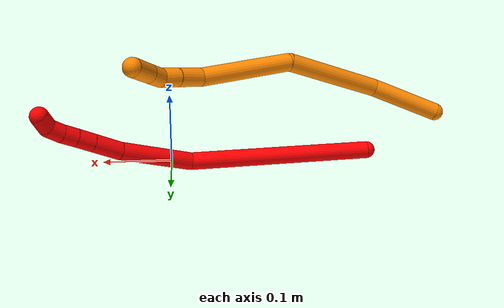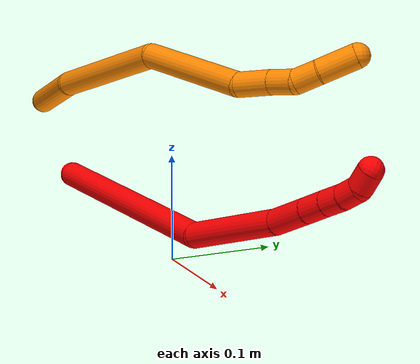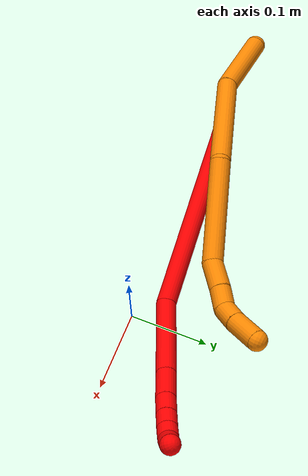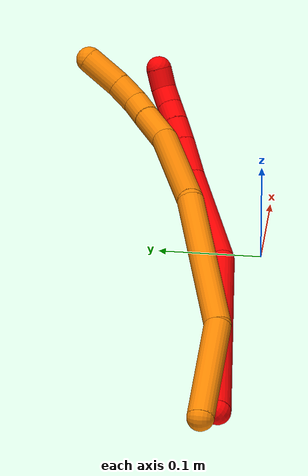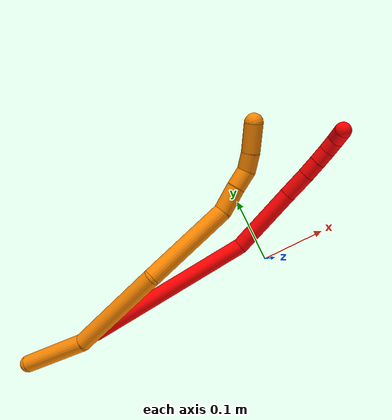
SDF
<sdf version="1.7">
 <world name="default">
  <model name="2">
   <static>0</static>
   <link name="2">
    <collision name="collision-cylinder-e_1_1_4">
     <pose>0.127976 -0.021684 -0.02227 2.36952 1.33253 2.18735</pose>
     <geometry><cylinder><radius>0.0125</radius><length>0.263393</length></cylinder></geometry>
     <surface>
      <friction><ode><mu>1.16</mu><mu2>1.16</mu2><slip1>0</slip1><slip2>0</slip2></ode></friction>
      <contact><ode><kp>1e+06</kp><kd>1</kd><max_vel>0</max_vel><min_depth>0.001</min_depth></ode></contact>
     </surface>
    </collision>
    <visual name="visual-cylinder-e_1_1_4">
     <pose>0.127976 -0.021684 -0.02227 2.36952 1.33253 2.18735</pose>
     <geometry><cylinder><radius>0.0125</radius><length>0.263393</length></cylinder></geometry>
     <material><ambient>1 0 0 1</ambient></material>
    </visual>
    <collision name="collision-cylinder-e_2_4_5">
     <pose>0.307857 -0.050907 -0.030588 0.495421 1.27427 0.370068</pose>
     <geometry><cylinder><radius>0.0125</radius><length>0.108548</length></cylinder></geometry>
     <surface>
      <friction><ode><mu>1.16</mu><mu2>1.16</mu2><slip1>0</slip1><slip2>0</slip2></ode></friction>
      <contact><ode><kp>1e+06</kp><kd>1</kd><max_vel>0</max_vel><min_depth>0.001</min_depth></ode></contact>
     </surface>
    </collision>
    <visual name="visual-cylinder-e_2_4_5">
     <pose>0.307857 -0.050907 -0.030588 0.495421 1.27427 0.370068</pose>
     <geometry><cylinder><radius>0.0125</radius><length>0.108548</length></cylinder></geometry>
     <material><ambient>1 0 0 1</ambient></material>
    </visual>
    <collision name="collision-cylinder-e_3_5_6">
     <pose>0.378409 -0.063098 -0.009385 0.570414 1.138 0.370731</pose>
     <geometry><cylinder><radius>0.0125</radius><length>0.04108</length></cylinder></geometry>
     <surface>
      <friction><ode><mu>1.16</mu><mu2>1.16</mu2><slip1>0</slip1><slip2>0</slip2></ode></friction>
      <contact><ode><kp>1e+06</kp><kd>1</kd><max_vel>0</max_vel><min_depth>0.001</min_depth></ode></contact>
     </surface>
    </collision>
    <visual name="visual-cylinder-e_3_5_6">
     <pose>0.378409 -0.063098 -0.009385 0.570414 1.138 0.370731</pose>
     <geometry><cylinder><radius>0.0125</radius><length>0.04108</length></cylinder></geometry>
     <material><ambient>1 0 0 1</ambient></material>
    </visual>
    <collision name="collision-cylinder-e_4_6_7">
     <pose>0.408324 -0.070322 0.002616 0.496241 1.12382 0.316349</pose>
     <geometry><cylinder><radius>0.0125</radius><length>0.024994</length></cylinder></geometry>
     <surface>
      <friction><ode><mu>1.16</mu><mu2>1.16</mu2><slip1>0</slip1><slip2>0</slip2></ode></friction>
      <contact><ode><kp>1e+06</kp><kd>1</kd><max_vel>0</max_vel><min_depth>0.001</min_depth></ode></contact>
     </surface>
    </collision>
    <visual name="visual-cylinder-e_4_6_7">
     <pose>0.408324 -0.070322 0.002616 0.496241 1.12382 0.316349</pose>
     <geometry><cylinder><radius>0.0125</radius><length>0.024994</length></cylinder></geometry>
     <material><ambient>1 0 0 1</ambient></material>
    </visual>
    <collision name="collision-cylinder-e_5_7_8">
     <pose>0.429037 -0.074849 0.011302 0.461054 1.13528 0.297105</pose>
     <geometry><cylinder><radius>0.0125</radius><length>0.020834</length></cylinder></geometry>
     <surface>
      <friction><ode><mu>1.16</mu><mu2>1.16</mu2><slip1>0</slip1><slip2>0</slip2></ode></friction>
      <contact><ode><kp>1e+06</kp><kd>1</kd><max_vel>0</max_vel><min_depth>0.001</min_depth></ode></contact>
     </surface>
    </collision>
    <visual name="visual-cylinder-e_5_7_8">
     <pose>0.429037 -0.074849 0.011302 0.461054 1.13528 0.297105</pose>
     <geometry><cylinder><radius>0.0125</radius><length>0.020834</length></cylinder></geometry>
     <material><ambient>1 0 0 1</ambient></material>
    </visual>
    <collision name="collision-cylinder-e_6_8_9">
     <pose>0.447057 -0.079169 0.020045 0.457182 1.01239 0.256544</pose>
     <geometry><cylinder><radius>0.0125</radius><length>0.020223</length></cylinder></geometry>
     <surface>
      <friction><ode><mu>1.16</mu><mu2>1.16</mu2><slip1>0</slip1><slip2>0</slip2></ode></friction>
      <contact><ode><kp>1e+06</kp><kd>1</kd><max_vel>0</max_vel><min_depth>0.001</min_depth></ode></contact>
     </surface>
    </collision>
    <visual name="visual-cylinder-e_6_8_9">
     <pose>0.447057 -0.079169 0.020045 0.457182 1.01239 0.256544</pose>
     <geometry><cylinder><radius>0.0125</radius><length>0.020223</length></cylinder></geometry>
     <material><ambient>1 0 0 1</ambient></material>
    </visual>
    <collision name="collision-cylinder-e_7_9_2">
     <pose>0.460953 -0.086164 0.032582 0.539676 0.533325 0.150821</pose>
     <geometry><cylinder><radius>0.0125</radius><length>0.020929</length></cylinder></geometry>
     <surface>
      <friction><ode><mu>1.16</mu><mu2>1.16</mu2><slip1>0</slip1><slip2>0</slip2></ode></friction>
      <contact><ode><kp>1e+06</kp><kd>1</kd><max_vel>0</max_vel><min_depth>0.001</min_depth></ode></contact>
     </surface>
    </collision>
    <visual name="visual-cylinder-e_7_9_2">
     <pose>0.460953 -0.086164 0.032582 0.539676 0.533325 0.150821</pose>
     <geometry><cylinder><radius>0.0125</radius><length>0.020929</length></cylinder></geometry>
     <material><ambient>1 0 0 1</ambient></material>
    </visual>
    <collision name="collision-sphere-2">
     <pose>0.466273 -0.090795 0.040313 0 -0 0</pose>
     <geometry><sphere><radius>0.0125</radius></sphere></geometry>
     <surface>
      <friction><ode><mu>1.16</mu><mu2>1.16</mu2><slip1>0</slip1><slip2>0</slip2></ode></friction>
      <contact><ode><kp>1e+06</kp><kd>1</kd><max_vel>0</max_vel><min_depth>0.001</min_depth></ode></contact>
     </surface>
    </collision>
    <visual name="visual-sphere-2">
     <pose>0.466273 -0.090795 0.040313 0 -0 0</pose>
     <geometry><sphere><radius>0.0125</radius></sphere></geometry>
     <material><ambient>1 0 0 1</ambient></material>
    </visual>
    <collision name="collision-sphere-9">
     <pose>0.455633 -0.081534 0.024852 0 -0 0</pose>
     <geometry><sphere><radius>0.0125</radius></sphere></geometry>
     <surface>
      <friction><ode><mu>1.16</mu><mu2>1.16</mu2><slip1>0</slip1><slip2>0</slip2></ode></friction>
      <contact><ode><kp>1e+06</kp><kd>1</kd><max_vel>0</max_vel><min_depth>0.001</min_depth></ode></contact>
     </surface>
    </collision>
    <visual name="visual-sphere-9">
     <pose>0.455633 -0.081534 0.024852 0 -0 0</pose>
     <geometry><sphere><radius>0.0125</radius></sphere></geometry>
     <material><ambient>1 0 0 1</ambient></material>
    </visual>
    <collision name="collision-sphere-4">
     <pose>0.255952 -0.043368 -0.04454 0 -0 0</pose>
     <geometry><sphere><radius>0.0125</radius></sphere></geometry>
     <surface>
      <friction><ode><mu>1.16</mu><mu2>1.16</mu2><slip1>0</slip1><slip2>0</slip2></ode></friction>
      <contact><ode><kp>1e+06</kp><kd>1</kd><max_vel>0</max_vel><min_depth>0.001</min_depth></ode></contact>
     </surface>
    </collision>
    <visual name="visual-sphere-4">
     <pose>0.255952 -0.043368 -0.04454 0 -0 0</pose>
     <geometry><sphere><radius>0.0125</radius></sphere></geometry>
     <material><ambient>1 0 0 1</ambient></material>
    </visual>
    <collision name="collision-sphere-1">
     <geometry><sphere><radius>0.0125</radius></sphere></geometry>
     <surface>
      <friction><ode><mu>1.16</mu><mu2>1.16</mu2><slip1>0</slip1><slip2>0</slip2></ode></friction>
      <contact><ode><kp>1e+06</kp><kd>1</kd><max_vel>0</max_vel><min_depth>0.001</min_depth></ode></contact>
     </surface>
    </collision>
    <visual name="visual-sphere-1">
     <geometry><sphere><radius>0.0125</radius></sphere></geometry>
     <material><ambient>1 0 0 1</ambient></material>
    </visual>
    <collision name="collision-sphere-8">
     <pose>0.438482 -0.076804 0.015238 0 -0 0</pose>
     <geometry><sphere><radius>0.0125</radius></sphere></geometry>
     <surface>
      <friction><ode><mu>1.16</mu><mu2>1.16</mu2><slip1>0</slip1><slip2>0</slip2></ode></friction>
      <contact><ode><kp>1e+06</kp><kd>1</kd><max_vel>0</max_vel><min_depth>0.001</min_depth></ode></contact>
     </surface>
    </collision>
    <visual name="visual-sphere-8">
     <pose>0.438482 -0.076804 0.015238 0 -0 0</pose>
     <geometry><sphere><radius>0.0125</radius></sphere></geometry>
     <material><ambient>1 0 0 1</ambient></material>
    </visual>
    <collision name="collision-sphere-5">
     <pose>0.359763 -0.058447 -0.016636 0 -0 0</pose>
     <geometry><sphere><radius>0.0125</radius></sphere></geometry>
     <surface>
      <friction><ode><mu>1.16</mu><mu2>1.16</mu2><slip1>0</slip1><slip2>0</slip2></ode></friction>
      <contact><ode><kp>1e+06</kp><kd>1</kd><max_vel>0</max_vel><min_depth>0.001</min_depth></ode></contact>
     </surface>
    </collision>
    <visual name="visual-sphere-5">
     <pose>0.359763 -0.058447 -0.016636 0 -0 0</pose>
     <geometry><sphere><radius>0.0125</radius></sphere></geometry>
     <material><ambient>1 0 0 1</ambient></material>
    </visual>
    <collision name="collision-sphere-6">
     <pose>0.397055 -0.06775 -0.002134 0 -0 0</pose>
     <geometry><sphere><radius>0.0125</radius></sphere></geometry>
     <surface>
      <friction><ode><mu>1.16</mu><mu2>1.16</mu2><slip1>0</slip1><slip2>0</slip2></ode></friction>
      <contact><ode><kp>1e+06</kp><kd>1</kd><max_vel>0</max_vel><min_depth>0.001</min_depth></ode></contact>
     </surface>
    </collision>
    <visual name="visual-sphere-6">
     <pose>0.397055 -0.06775 -0.002134 0 -0 0</pose>
     <geometry><sphere><radius>0.0125</radius></sphere></geometry>
     <material><ambient>1 0 0 1</ambient></material>
    </visual>
    <collision name="collision-sphere-7">
     <pose>0.419593 -0.072894 0.007366 0 -0 0</pose>
     <geometry><sphere><radius>0.0125</radius></sphere></geometry>
     <surface>
      <friction><ode><mu>1.16</mu><mu2>1.16</mu2><slip1>0</slip1><slip2>0</slip2></ode></friction>
      <contact><ode><kp>1e+06</kp><kd>1</kd><max_vel>0</max_vel><min_depth>0.001</min_depth></ode></contact>
     </surface>
    </collision>
    <visual name="visual-sphere-7">
     <pose>0.419593 -0.072894 0.007366 0 -0 0</pose>
     <geometry><sphere><radius>0.0125</radius></sphere></geometry>
     <material><ambient>1 0 0 1</ambient></material>
    </visual>
    <inertial>
     <pose>0.241004 -0.041101 -0.016367 0 -0 0</pose>
     <mass>0.5</mass>
     <inertia>
      <ixx>0.000173</ixx>
      <ixy>0</ixy>
      <ixz>0</ixz>
      <iyy>0.001908</iyy>
      <iyz>0</iyz>
      <izz>-0.001334</izz>
     </inertia>
    </inertial>
   </link>
   <pose>-0.290127 0.011928 0.011476 -0.692941 -0.025661 0.326836</pose>
  </model>
  <model name="19">
   <static>0</static>
   <link name="19">
    <collision name="collision-cylinder-e_1_1_4">
     <pose>0.023884 -0.044196 0.001396 1.53923 0.495247 0.480449</pose>
     <geometry><cylinder><radius>0.0125</radius><length>0.100512</length></cylinder></geometry>
     <surface>
      <friction><ode><mu>1.16</mu><mu2>1.16</mu2><slip1>0</slip1><slip2>0</slip2></ode></friction>
      <contact><ode><kp>1e+06</kp><kd>1</kd><max_vel>0</max_vel><min_depth>0.001</min_depth></ode></contact>
     </surface>
    </collision>
    <visual name="visual-cylinder-e_1_1_4">
     <pose>0.023884 -0.044196 0.001396 1.53923 0.495247 0.480449</pose>
     <geometry><cylinder><radius>0.0125</radius><length>0.100512</length></cylinder></geometry>
     <material><ambient>0.996078 0.537255 0 1</ambient></material>
    </visual>
    <collision name="collision-cylinder-e_2_4_5">
     <pose>0.080036 -0.147846 0.02783 1.1722 0.4638 0.311036</pose>
     <geometry><cylinder><radius>0.0125</radius><length>0.144263</length></cylinder></geometry>
     <surface>
      <friction><ode><mu>1.16</mu><mu2>1.16</mu2><slip1>0</slip1><slip2>0</slip2></ode></friction>
      <contact><ode><kp>1e+06</kp><kd>1</kd><max_vel>0</max_vel><min_depth>0.001</min_depth></ode></contact>
     </surface>
    </collision>
    <visual name="visual-cylinder-e_2_4_5">
     <pose>0.080036 -0.147846 0.02783 1.1722 0.4638 0.311036</pose>
     <geometry><cylinder><radius>0.0125</radius><length>0.144263</length></cylinder></geometry>
     <material><ambient>0.996078 0.537255 0 1</ambient></material>
    </visual>
    <collision name="collision-cylinder-e_3_5_6">
     <pose>0.160851 -0.241876 0.077366 0.954386 0.853175 0.461618</pose>
     <geometry><cylinder><radius>0.0125</radius><length>0.128879</length></cylinder></geometry>
     <surface>
      <friction><ode><mu>1.16</mu><mu2>1.16</mu2><slip1>0</slip1><slip2>0</slip2></ode></friction>
      <contact><ode><kp>1e+06</kp><kd>1</kd><max_vel>0</max_vel><min_depth>0.001</min_depth></ode></contact>
     </surface>
    </collision>
    <visual name="visual-cylinder-e_3_5_6">
     <pose>0.160851 -0.241876 0.077366 0.954386 0.853175 0.461618</pose>
     <geometry><cylinder><radius>0.0125</radius><length>0.128879</length></cylinder></geometry>
     <material><ambient>0.996078 0.537255 0 1</ambient></material>
    </visual>
    <collision name="collision-cylinder-e_4_6_7">
     <pose>0.217879 -0.287789 0.113537 0.770721 0.480475 0.198089</pose>
     <geometry><cylinder><radius>0.0125</radius><length>0.036701</length></cylinder></geometry>
     <surface>
      <friction><ode><mu>1.16</mu><mu2>1.16</mu2><slip1>0</slip1><slip2>0</slip2></ode></friction>
      <contact><ode><kp>1e+06</kp><kd>1</kd><max_vel>0</max_vel><min_depth>0.001</min_depth></ode></contact>
     </surface>
    </collision>
    <visual name="visual-cylinder-e_4_6_7">
     <pose>0.217879 -0.287789 0.113537 0.770721 0.480475 0.198089</pose>
     <geometry><cylinder><radius>0.0125</radius><length>0.036701</length></cylinder></geometry>
     <material><ambient>0.996078 0.537255 0 1</ambient></material>
    </visual>
    <collision name="collision-cylinder-e_5_7_8">
     <pose>0.233197 -0.306969 0.132919 0.794171 0.556178 0.23831</pose>
     <geometry><cylinder><radius>0.0125</radius><length>0.025897</length></cylinder></geometry>
     <surface>
      <friction><ode><mu>1.16</mu><mu2>1.16</mu2><slip1>0</slip1><slip2>0</slip2></ode></friction>
      <contact><ode><kp>1e+06</kp><kd>1</kd><max_vel>0</max_vel><min_depth>0.001</min_depth></ode></contact>
     </surface>
    </collision>
    <visual name="visual-cylinder-e_5_7_8">
     <pose>0.233197 -0.306969 0.132919 0.794171 0.556178 0.23831</pose>
     <geometry><cylinder><radius>0.0125</radius><length>0.025897</length></cylinder></geometry>
     <material><ambient>0.996078 0.537255 0 1</ambient></material>
    </visual>
    <collision name="collision-cylinder-e_6_8_9">
     <pose>0.241207 -0.322867 0.150151 0.701932 0.093824 0.034373</pose>
     <geometry><cylinder><radius>0.0125</radius><length>0.025056</length></cylinder></geometry>
     <surface>
      <friction><ode><mu>1.16</mu><mu2>1.16</mu2><slip1>0</slip1><slip2>0</slip2></ode></friction>
      <contact><ode><kp>1e+06</kp><kd>1</kd><max_vel>0</max_vel><min_depth>0.001</min_depth></ode></contact>
     </surface>
    </collision>
    <visual name="visual-cylinder-e_6_8_9">
     <pose>0.241207 -0.322867 0.150151 0.701932 0.093824 0.034373</pose>
     <geometry><cylinder><radius>0.0125</radius><length>0.025056</length></cylinder></geometry>
     <material><ambient>0.996078 0.537255 0 1</ambient></material>
    </visual>
    <collision name="collision-cylinder-e_7_9_2">
     <pose>0.24277 -0.341904 0.175597 0.603866 0.020128 0.006269</pose>
     <geometry><cylinder><radius>0.0125</radius><length>0.038692</length></cylinder></geometry>
     <surface>
      <friction><ode><mu>1.16</mu><mu2>1.16</mu2><slip1>0</slip1><slip2>0</slip2></ode></friction>
      <contact><ode><kp>1e+06</kp><kd>1</kd><max_vel>0</max_vel><min_depth>0.001</min_depth></ode></contact>
     </surface>
    </collision>
    <visual name="visual-cylinder-e_7_9_2">
     <pose>0.24277 -0.341904 0.175597 0.603866 0.020128 0.006269</pose>
     <geometry><cylinder><radius>0.0125</radius><length>0.038692</length></cylinder></geometry>
     <material><ambient>0.996078 0.537255 0 1</ambient></material>
    </visual>
    <collision name="collision-sphere-2">
     <pose>0.24316 -0.352887 0.191518 0 -0 0</pose>
     <geometry><sphere><radius>0.0125</radius></sphere></geometry>
     <surface>
      <friction><ode><mu>1.16</mu><mu2>1.16</mu2><slip1>0</slip1><slip2>0</slip2></ode></friction>
      <contact><ode><kp>1e+06</kp><kd>1</kd><max_vel>0</max_vel><min_depth>0.001</min_depth></ode></contact>
     </surface>
    </collision>
    <visual name="visual-sphere-2">
     <pose>0.24316 -0.352887 0.191518 0 -0 0</pose>
     <geometry><sphere><radius>0.0125</radius></sphere></geometry>
     <material><ambient>0.996078 0.537255 0 1</ambient></material>
    </visual>
    <collision name="collision-sphere-9">
     <pose>0.242381 -0.330921 0.159676 0 -0 0</pose>
     <geometry><sphere><radius>0.0125</radius></sphere></geometry>
     <surface>
      <friction><ode><mu>1.16</mu><mu2>1.16</mu2><slip1>0</slip1><slip2>0</slip2></ode></friction>
      <contact><ode><kp>1e+06</kp><kd>1</kd><max_vel>0</max_vel><min_depth>0.001</min_depth></ode></contact>
     </surface>
    </collision>
    <visual name="visual-sphere-9">
     <pose>0.242381 -0.330921 0.159676 0 -0 0</pose>
     <geometry><sphere><radius>0.0125</radius></sphere></geometry>
     <material><ambient>0.996078 0.537255 0 1</ambient></material>
    </visual>
    <collision name="collision-sphere-4">
     <pose>0.047768 -0.088391 0.002791 0 -0 0</pose>
     <geometry><sphere><radius>0.0125</radius></sphere></geometry>
     <surface>
      <friction><ode><mu>1.16</mu><mu2>1.16</mu2><slip1>0</slip1><slip2>0</slip2></ode></friction>
      <contact><ode><kp>1e+06</kp><kd>1</kd><max_vel>0</max_vel><min_depth>0.001</min_depth></ode></contact>
     </surface>
    </collision>
    <visual name="visual-sphere-4">
     <pose>0.047768 -0.088391 0.002791 0 -0 0</pose>
     <geometry><sphere><radius>0.0125</radius></sphere></geometry>
     <material><ambient>0.996078 0.537255 0 1</ambient></material>
    </visual>
    <collision name="collision-sphere-1">
     <geometry><sphere><radius>0.0125</radius></sphere></geometry>
     <surface>
      <friction><ode><mu>1.16</mu><mu2>1.16</mu2><slip1>0</slip1><slip2>0</slip2></ode></friction>
      <contact><ode><kp>1e+06</kp><kd>1</kd><max_vel>0</max_vel><min_depth>0.001</min_depth></ode></contact>
     </surface>
    </collision>
    <visual name="visual-sphere-1">
     <geometry><sphere><radius>0.0125</radius></sphere></geometry>
     <material><ambient>0.996078 0.537255 0 1</ambient></material>
    </visual>
    <collision name="collision-sphere-8">
     <pose>0.240033 -0.314813 0.140627 0 -0 0</pose>
     <geometry><sphere><radius>0.0125</radius></sphere></geometry>
     <surface>
      <friction><ode><mu>1.16</mu><mu2>1.16</mu2><slip1>0</slip1><slip2>0</slip2></ode></friction>
      <contact><ode><kp>1e+06</kp><kd>1</kd><max_vel>0</max_vel><min_depth>0.001</min_depth></ode></contact>
     </surface>
    </collision>
    <visual name="visual-sphere-8">
     <pose>0.240033 -0.314813 0.140627 0 -0 0</pose>
     <geometry><sphere><radius>0.0125</radius></sphere></geometry>
     <material><ambient>0.996078 0.537255 0 1</ambient></material>
    </visual>
    <collision name="collision-sphere-5">
     <pose>0.112304 -0.2073 0.052868 0 -0 0</pose>
     <geometry><sphere><radius>0.0125</radius></sphere></geometry>
     <surface>
      <friction><ode><mu>1.16</mu><mu2>1.16</mu2><slip1>0</slip1><slip2>0</slip2></ode></friction>
      <contact><ode><kp>1e+06</kp><kd>1</kd><max_vel>0</max_vel><min_depth>0.001</min_depth></ode></contact>
     </surface>
    </collision>
    <visual name="visual-sphere-5">
     <pose>0.112304 -0.2073 0.052868 0 -0 0</pose>
     <geometry><sphere><radius>0.0125</radius></sphere></geometry>
     <material><ambient>0.996078 0.537255 0 1</ambient></material>
    </visual>
    <collision name="collision-sphere-6">
     <pose>0.209398 -0.276452 0.101863 0 -0 0</pose>
     <geometry><sphere><radius>0.0125</radius></sphere></geometry>
     <surface>
      <friction><ode><mu>1.16</mu><mu2>1.16</mu2><slip1>0</slip1><slip2>0</slip2></ode></friction>
      <contact><ode><kp>1e+06</kp><kd>1</kd><max_vel>0</max_vel><min_depth>0.001</min_depth></ode></contact>
     </surface>
    </collision>
    <visual name="visual-sphere-6">
     <pose>0.209398 -0.276452 0.101863 0 -0 0</pose>
     <geometry><sphere><radius>0.0125</radius></sphere></geometry>
     <material><ambient>0.996078 0.537255 0 1</ambient></material>
    </visual>
    <collision name="collision-sphere-7">
     <pose>0.226361 -0.299125 0.125212 0 -0 0</pose>
     <geometry><sphere><radius>0.0125</radius></sphere></geometry>
     <surface>
      <friction><ode><mu>1.16</mu><mu2>1.16</mu2><slip1>0</slip1><slip2>0</slip2></ode></friction>
      <contact><ode><kp>1e+06</kp><kd>1</kd><max_vel>0</max_vel><min_depth>0.001</min_depth></ode></contact>
     </surface>
    </collision>
    <visual name="visual-sphere-7">
     <pose>0.226361 -0.299125 0.125212 0 -0 0</pose>
     <geometry><sphere><radius>0.0125</radius></sphere></geometry>
     <material><ambient>0.996078 0.537255 0 1</ambient></material>
    </visual>
    <inertial>
     <pose>0.128299 -0.193548 0.064583 0 -0 0</pose>
     <mass>0.5</mass>
     <inertia>
      <ixx>0.000591</ixx>
      <ixy>0</ixy>
      <ixz>0</ixz>
      <iyy>0.000441</iyy>
      <iyz>0</iyz>
      <izz>0.000113</izz>
     </inertia>
    </inertial>
   </link>
   <pose>-0.38852 0.01707 0.070134 -1.58548 0.68521 -0.100622</pose>
  </model>
 </world>
</sdf>
